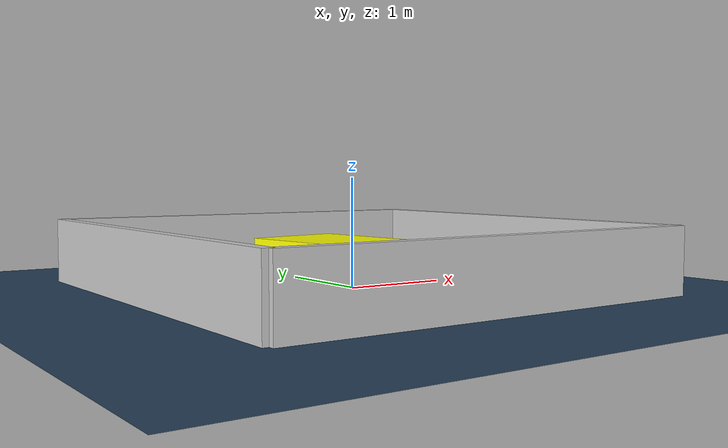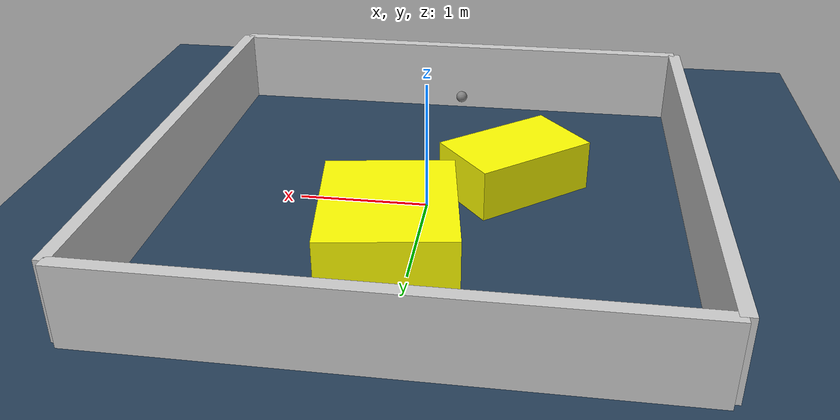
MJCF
<?xml version="1.0" ?>
<mujoco model="generated_environment">
  <option timestep="0.01" integrator="RK4" cone="elliptic"/>
  <default>
    <geom density="1"/>
  </default>
  <asset>
    <texture builtin="gradient" height="3072" rgb1="0.3 0.5 0.7" rgb2="0 0 0" type="skybox" width="512"/>
    <texture builtin="checker" height="300" mark="edge" markrgb="0.8 0.8 0.8" name="groundplane" rgb1="0.2 0.3 0.4" rgb2="0.1 0.2 0.3" type="2d" width="300"/>
    <material name="groundplane" reflectance="0.2" texrepeat="5 5" texture="groundplane" texuniform="true"/>
    <material name="robot" rgba="0.0 1.0 0.0 1"/>
  </asset>
  <worldbody>
    <light dir="0 0 -1" directional="true" pos="0 0 1.5"/>
    <geom condim="4" friction="1.0 0.005 0.001" material="groundplane" name="floor" size="0 0 0.05" type="plane"/>
    <body name="walls">
      <geom name="wall_1" condim="4" pos="-2.0 0.0 0.3" rgba="0.800000011920929 0.800000011920929 0.800000011920929 1.0" size="0.05 2.0 0.3" type="box"/>
      <geom name="wall_2" condim="4" pos="2.0 0.0 0.3" rgba="0.800000011920929 0.800000011920929 0.800000011920929 1.0" size="0.05 2.0 0.3" type="box"/>
      <geom name="wall_3" condim="4" pos="0.0 -2.0 0.3" rgba="0.800000011920929 0.800000011920929 0.800000011920929 1.0" size="2.0 0.05 0.3" type="box"/>
      <geom name="wall_4" condim="4" pos="0.0 2.0 0.3" rgba="0.800000011920929 0.800000011920929 0.800000011920929 1.0" size="2.0 0.05 0.3" type="box"/>
    </body>
    <body name="robot">
      <joint name="joint_x" type="slide" pos="0 0 0" axis="1 0 0"/>
      <joint name="joint_y" type="slide" pos="0 0 0" axis="0 1 0"/>
      <geom name="robot" type="sphere" pos="-0.09141431386313092 -1.71239720549024 0.2" size="0.05" mass="5." friction="1.0 0.005 0.0001" condim="4"/>
      <site name="sensor_ball"/>
    </body>
    <body name="obstacle_1_movable">
      <geom name="obstacle_1_movable" condim="4" pos="0.18576979539139482 0.6360365545115529 0.2" euler="0 0 8.479703215132917" friction="1.0 0.005 0.001" rgba="1 1 0 1" size="0.48896534754117044 0.5829513451180327 0.2" type="box" mass="0.1"/>
      <joint type="free"/>
    </body>
    <body name="obstacle_2_movable">
      <geom name="obstacle_2_movable" condim="4" pos="-0.6453809228031854 -0.3783887816595377 0.2" euler="0 0 39.3953531477927" friction="1.0 0.005 0.001" rgba="1 1 0 1" size="0.5019724900556661 0.31128037647895046 0.2" type="box" mass="0.1"/>
      <joint type="free"/>
    </body>
  </worldbody>
  <actuator>
    <motor name="actuator_x" joint="joint_x" gear="1" ctrlrange="-1 1"/>
    <motor name="actuator_y" joint="joint_y" gear="1" ctrlrange="-1 1"/>
  </actuator>
</mujoco>
